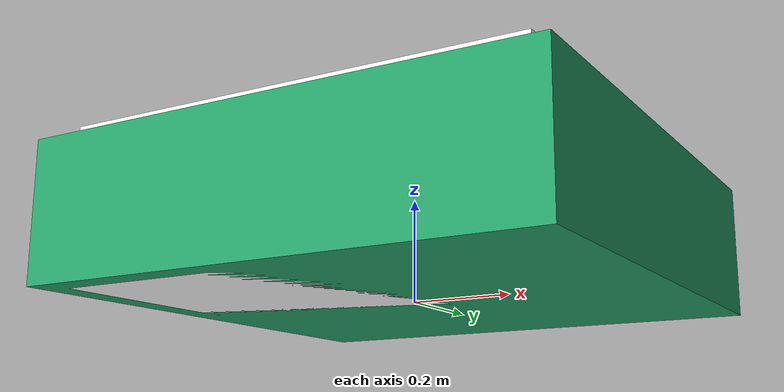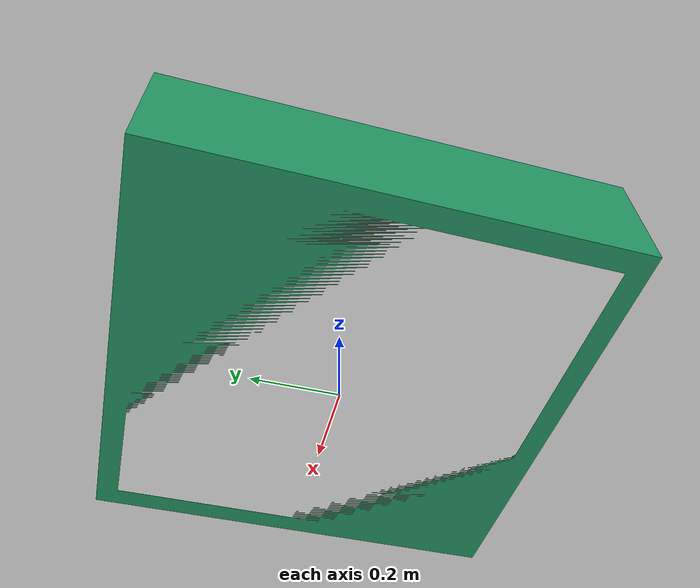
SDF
<?xml version='1.0'?>
<sdf version='1.7'>
  <model name='helibox'>
    <pose>0 0 0 0 -0 0</pose>
    <link name='Wall_0'>
      <collision name='Wall_0_Collision'>
        <geometry>
          <box>
            <size>0.9 0.9 0.3</size>
          </box>
        </geometry>
        <pose>0 0 0.15 0 -0 0</pose>
      </collision>
      <visual name='Wall_0_Visual'>
        <pose>0 0 0.15 0 -0 0</pose>
        <geometry>
          <box>
            <size>0.9 0.9 0.3</size>
          </box>
        </geometry>
        <material>
          <script>
            <uri>model://helibox/materials/scripts</uri>
            <uri>model://helibox/materials/textures</uri>
            <name>RepeatedTexture</name>
          </script>
          <ambient>1 1 1 1</ambient>
        </material>
        <meta>
          <layer>0</layer>
        </meta>
      </visual>
      <pose>0 0 0 0 -0 0</pose>
    </link>
    <link name='Wall_2'>
      <collision name='Wall_2_Collision'>
        <geometry>
          <box>
            <size>1 1 0.27</size>
          </box>
        </geometry>
        <pose>0 0 0.135 0 -0 0</pose>
      </collision>
      <visual name='Wall_2_Visual'>
        <pose>0 0 0.135 0 -0 0</pose>
        <geometry>
          <box>
            <size>1 1 0.27</size>
          </box>
        </geometry>
        <material>
          <script>
            <uri>file://media/materials/scripts/gazebo.material</uri>
            <name>Gazebo/Grey</name>
          </script>
          <ambient>0.14902 0.635294 0.411765 1</ambient>
        </material>
        <meta>
          <layer>0</layer>
        </meta>
      </visual>
      <pose>0 0 0 0 -0 0</pose>
    </link>
    <static>1</static>
  </model>
</sdf>
